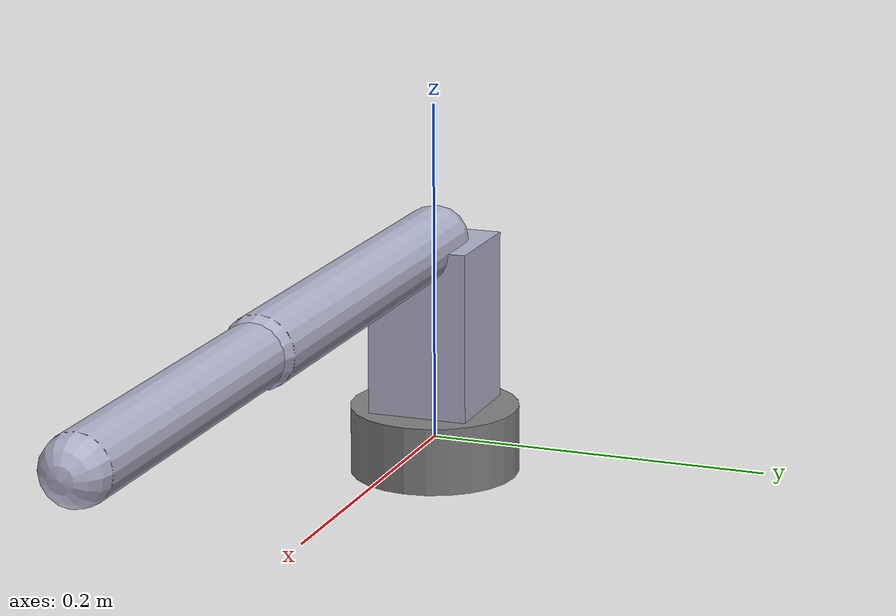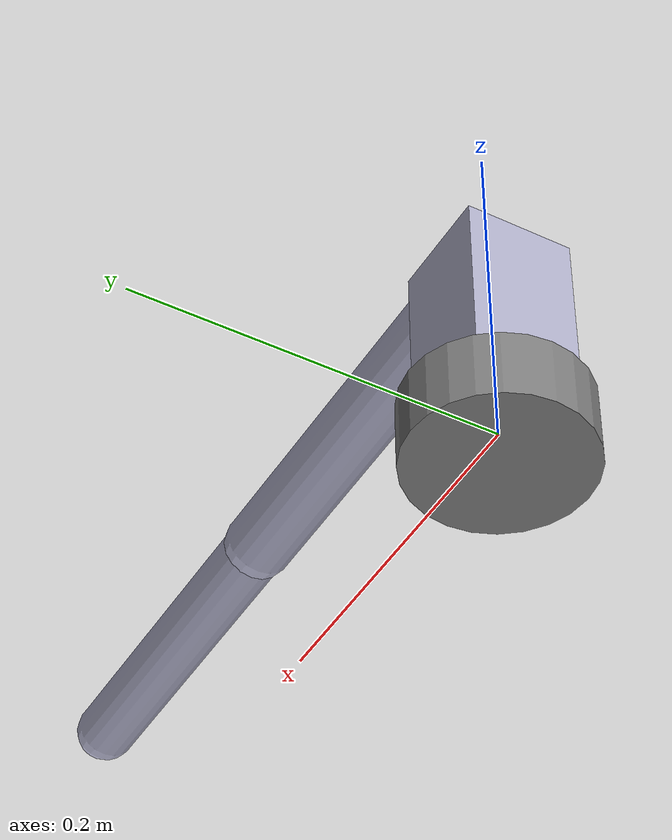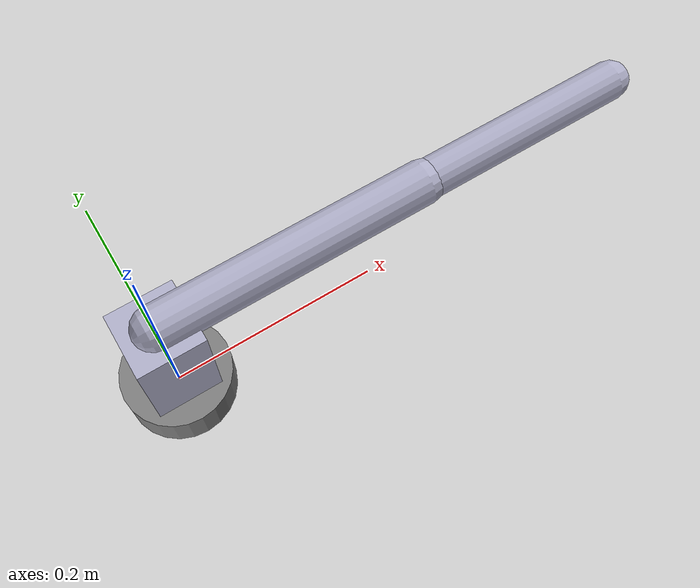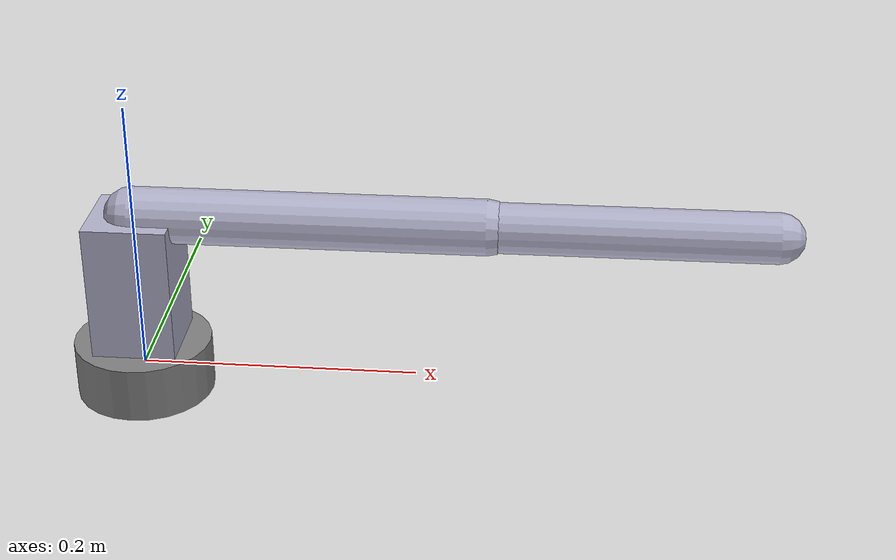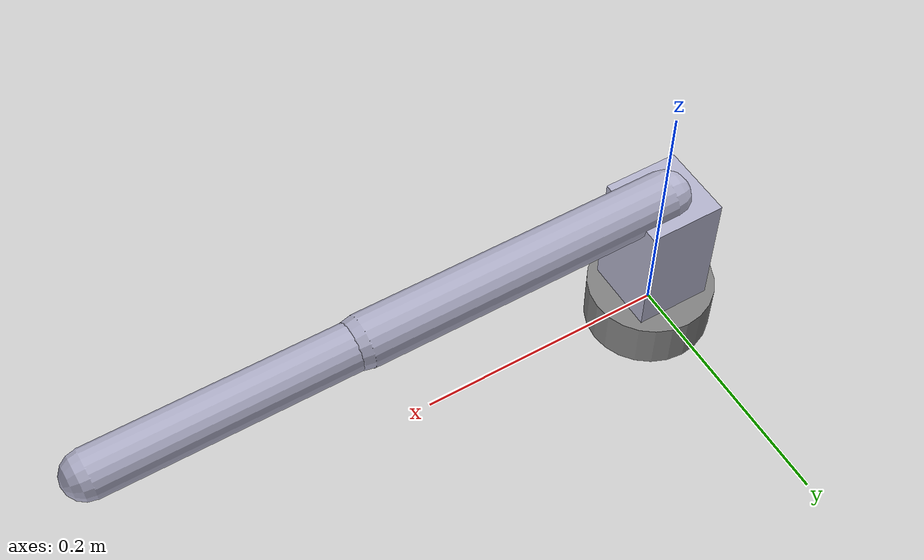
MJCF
<mujoco model="arm">
  <compiler angle="radian" meshdir="meshes"/>
  <option timestep="0.002" integrator="implicitfast"/>
  <asset>
    <mesh name="link1" file="link1.obj"/>
    <mesh name="link2" file="link2.obj"/>
    <mesh name="link3" file="link3.obj"/>
  </asset>
  <worldbody>
    <body name="base_link" pos="0 0 0">
      <geom type="cylinder" size="0.05 0.02" density="0"/>
      <body name="link1" pos="0 0 0.02">
        <joint name="j_yaw" type="hinge" axis="0 0 1" range="-3.14 3.14" limited="true" damping="0.05" frictionloss="0.02" armature="0.01"/>
        <inertial pos="0 0 0.05" mass="0.5" diaginertia="0.000566666667 0.000566666667 0.0003"/>
        <geom type="box" size="0.03 0.03 0.05" pos="0 0 0.05" density="0" rgba="0.7 0.7 0.8 1"/>
        <body name="link2" pos="0 0 0.1">
          <joint name="j_shoulder" type="hinge" axis="0 1 0" range="-2 2" limited="true" damping="0.05" frictionloss="0.02" armature="0.01"/>
          <inertial pos="0.125 0 0" mass="0.6" diaginertia="0.00012 0.003185 0.003185"/>
          <geom type="capsule" size="0.02" fromto="0 0 0 0.25 0 0" density="0" rgba="0.7 0.7 0.8 1"/>
          <body name="link3" pos="0.25 0 0">
            <joint name="j_elbow" type="hinge" axis="0 1 0" range="-2.6 2.6" limited="true" damping="0.05" frictionloss="0.02" armature="0.006"/>
            <inertial pos="0.111111111 0 0" mass="0.45" diaginertia="6.48e-05 0.00181017778 0.00181017778"/>
            <geom type="capsule" size="0.018" fromto="0 0 0 0.2 0 0" density="0" rgba="0.7 0.7 0.8 1"/>
            <body name="tool_link" pos="0.2 0 0">
              <site name="tcp" size="0.008" rgba="1 0.3 0.1 1"/>
            </body>
          </body>
        </body>
      </body>
    </body>
  </worldbody>
  <actuator>
    <motor joint="j_yaw" ctrlrange="-20 20"/>
    <motor joint="j_shoulder" ctrlrange="-20 20"/>
    <motor joint="j_elbow" ctrlrange="-20 20"/>
  </actuator>
</mujoco>
